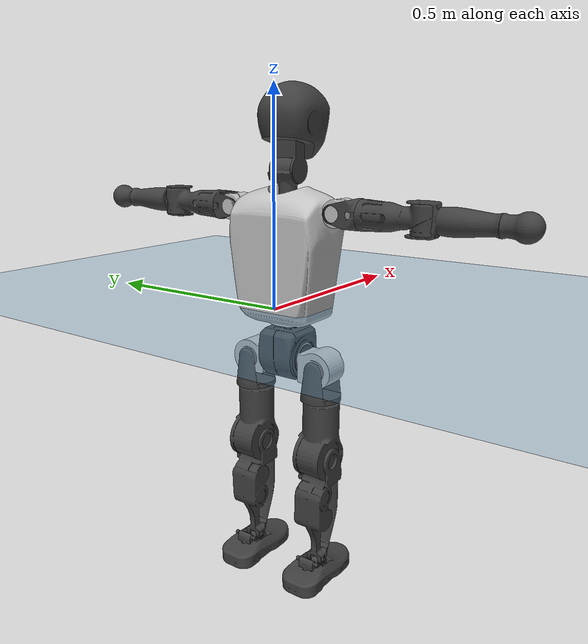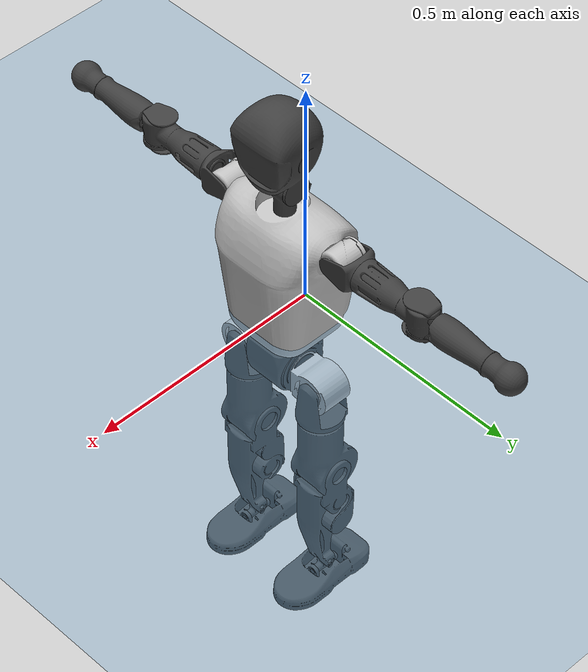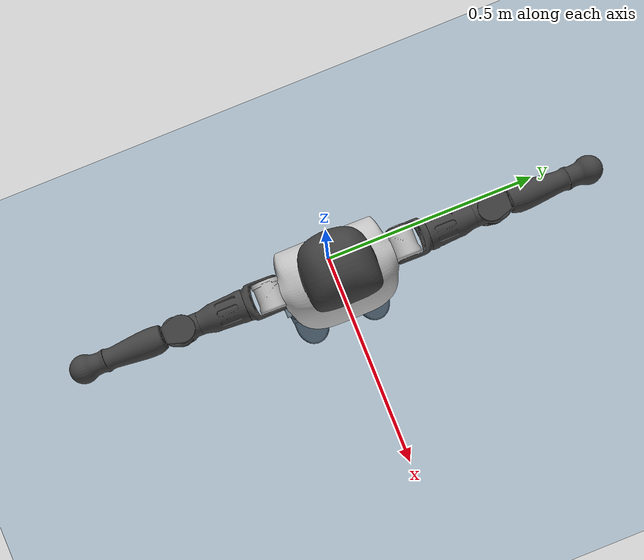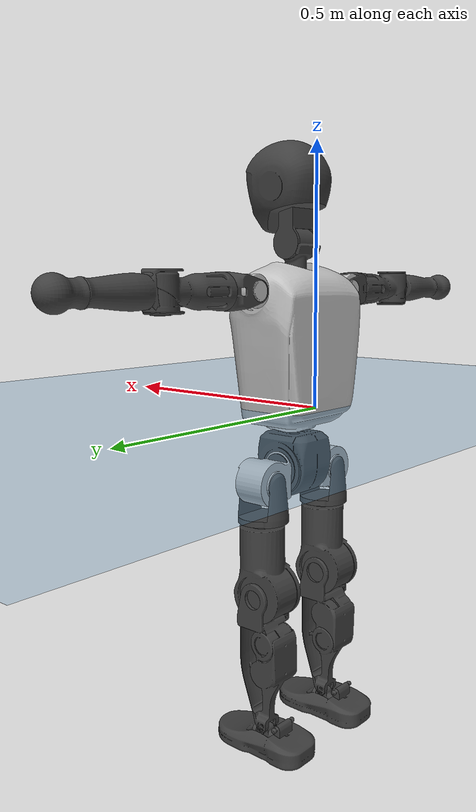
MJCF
<mujoco model="T1">
  <compiler angle="radian" assetdir="assets" balanceinertia="true" inertiafromgeom="false"/>

  <option timestep="0.005" density="1.2" viscosity="2e-05"/>

  <size nkey="1"/>

  <visual>
    <quality shadowsize="8192"/>
    <map shadowclip="0.5"/>
  </visual>

  <default>
    <default class="/">
      <joint armature="0.01" damping="0.01" frictionloss="0.1"/>
      <geom contype="0" conaffinity="0" group="1" solref="-1000 -80"/>
      <site size="0.01 0.005 0.005" group="5"/>
      <general forcelimited="true" biastype="affine" gainprm="25" biasprm="0 -25 -0.6"/>
      <default class="t1">
        <geom rgba="0.25 0.25 0.25 1"/>
        <default class="visual">
          <geom type="mesh" group="2"/>
        </default>
        <default class="collision">
          <geom group="3"/>
        </default>
        <default class="foot">
          <geom size="0.1115 0.05 0.015" type="box" condim="6" group="4" priority="1" solimp="0.015 1 0.015"/>
        </default>
        <default class="reward_collision_sphere">
          <geom group="5" rgba="1 0 0 1"/>
        </default>
      </default>
    </default>
  </default>

  <asset>
    <texture type="skybox" colorspace="auto" name="//unnamed_texture_0" builtin="gradient" rgb1="0.95 0.95 0.95" rgb2="0.95 0.95 0.95" width="100" height="600"/>
    <texture type="2d" colorspace="auto" name="texplane" builtin="checker" rgb1="0.345 0.575 0.748" rgb2="0.345 0.575 0.748" markrgb="1 1 1" width="512" height="512"/>
    <material name="MatPlane" class="/" texture="texplane" texuniform="true" texrepeat="2 2" specular="0.9"/>
    <mesh name="Trunk" class="/" file="Trunk.stl"/>
    <mesh name="H1" class="/" file="H1.stl"/>
    <mesh name="H2" class="/" file="H2.stl"/>
    <mesh name="AL1" class="/" file="AL1.stl"/>
    <mesh name="AL2" class="/" file="AL2.stl"/>
    <mesh name="AL3" class="/" file="AL3.stl"/>
    <mesh name="left_hand_link" class="/" file="left_hand_link.stl"/>
    <mesh name="AR1" class="/" file="AR1.stl"/>
    <mesh name="AR2" class="/" file="AR2.stl"/>
    <mesh name="AR3" class="/" file="AR3.stl"/>
    <mesh name="right_hand_link" class="/" file="right_hand_link.stl"/>
    <mesh name="Waist" class="/" file="Waist.stl"/>
    <mesh name="Hip_Pitch_Left" class="/" file="Hip_Pitch_Left.stl"/>
    <mesh name="Hip_Roll_Left" class="/" file="Hip_Roll_Left.stl"/>
    <mesh name="Hip_Yaw_Left" class="/" file="Hip_Yaw_Left.stl"/>
    <mesh name="Shank_Left" class="/" file="Shank_Left.stl"/>
    <mesh name="Ankle_Cross_Left" class="/" file="Ankle_Cross_Left.stl"/>
    <mesh name="left_foot_link" class="/" file="left_foot_link.stl"/>
    <mesh name="Hip_Pitch_Right" class="/" file="Hip_Pitch_Right.stl"/>
    <mesh name="Hip_Roll_Right" class="/" file="Hip_Roll_Right.stl"/>
    <mesh name="Hip_Yaw_Right" class="/" file="Hip_Yaw_Right.stl"/>
    <mesh name="Shank_Right" class="/" file="Shank_Right.stl"/>
    <mesh name="Ankle_Cross_Right" class="/" file="Ankle_Cross_Right.stl"/>
    <mesh name="right_foot_link" class="/" file="right_foot_link.stl"/>
  </asset>

  <worldbody>
    <geom name="floor" class="/" size="100 100 0.125" type="plane" group="0" material="MatPlane"/>
    <light name="toplight_shadow" class="/" pos="0 0 5" dir="0.0990148 0.0990148 -0.990148" type="directional" ambient="0.04 0.04 0.04" diffuse="0.55 0.55 0.55" specular="0.12 0.12 0.12"/>
    <light name="toplight_fill" class="/" pos="0 0 5" dir="0.0990148 0.0990148 -0.990148" type="directional" castshadow="false" ambient="0.04 0.04 0.04" diffuse="0.3 0.3 0.3" specular="0.08 0.08 0.08"/>
    <body name="trunk" childclass="t1" pos="-0.000746408 5.48756e-05 0.000110784" quat="1 7.35124e-05 8.8603e-05 -0.000209096">
      <inertial pos="0.0467505 -0.000651216 0.110164" quat="0.999966 0.00165547 -0.00811236 -4.38855e-05" mass="9.55416" diaginertia="0.0423351 0.0485755 0.0682042"/>
      <joint name="//unnamed_joint_0" type="free" armature="0" damping="0" frictionloss="0"/>
      <geom name="//unnamed_geom_1" class="visual" rgba="0.76 0.76 0.76 1" mesh="Trunk"/>
      <geom name="//unnamed_geom_2" class="collision" size="0.0702096 0.0936128 0.140419" pos="0.0514058 0 0.124731" type="box"/>
      <geom name="//unnamed_geom_3" class="reward_collision_sphere" size="0.107655" pos="0.0514058 0 0.103943"/>
      <geom name="//unnamed_geom_4" class="reward_collision_sphere" size="0.0140419" pos="0.0514058 0.0775365 0"/>
      <geom name="//unnamed_geom_5" class="reward_collision_sphere" size="0.0140419" pos="0.0514058 -0.0775365 0"/>
      <geom name="//unnamed_geom_6" class="reward_collision_sphere" size="0.0140419" pos="0.0514058 0.0976048 0.187097"/>
      <geom name="//unnamed_geom_7" class="reward_collision_sphere" size="0.0140419" pos="0.0514058 -0.0976048 0.187097"/>
      <site name="imu" pos="-0.00392654 0.00393157 -0.00247119" size="0.00936128"/>
      <camera name="track" pos="0 -1.82439 0" quat="0.707107 0.707107 0 0" mode="trackcom"/>
      <camera name="ego_camera" pos="0.104525 0 0.436559" quat="-0.5 -0.5 0.5 0.5"/>
      <body name="H1" pos="0.0515539 -0.00126046 0.250997" quat="1 -3.5097e-05 2.81728e-05 2.81705e-05">
        <inertial pos="-0.000478377 -0.00119042 0.0606037" quat="0.764006 -0.0174719 0.00225196 0.644969" mass="0.364165" diaginertia="0.000111294 0.000139522 0.000182259"/>
        <joint name="AAHead_yaw" pos="0 0 0" axis="0.00310386 0.000701667 0.999995" range="-1.56492 1.56327" armature="0.00950796" damping="0.0112042" frictionloss="0.089245"/>
        <geom name="//unnamed_geom_8" class="visual" mesh="H1"/>
        <body name="H2" pos="-0.000232358 -5.78097e-05 0.0639488" quat="1 4.31698e-05 -6.1297e-05 8.91066e-05">
          <inertial pos="0.00577553 -0.000468302 0.102558" quat="0.988241 0.108029 -0.0744074 -0.0785738" mass="0.517376" diaginertia="0.000948448 0.00121672 0.00206914"/>
          <joint name="Head_pitch" pos="0 0 0" axis="-0.000153241 -1 7.04261e-05" range="-1.22027 0.347688" armature="0.00904265" damping="0.00544021" frictionloss="0.0930959"/>
          <geom name="//unnamed_geom_9" class="visual" mesh="H2"/>
          <geom name="//unnamed_geom_10" class="collision" size="0.0748902" pos="0.00856763 0 0.114337"/>
          <geom name="//unnamed_geom_11" class="reward_collision_sphere" size="0.0842515" pos="0.0171353 0 0.103943"/>
        </body>
      </body>
      <body name="AL1" pos="0.049139 0.0987499 0.22678" quat="1 -4.42227e-06 0.000444293 -7.37781e-07">
        <inertial pos="-0.00178505 0.0415308 0.000202152" quat="0.504065 0.495488 -0.504073 0.496306" mass="0.424846" diaginertia="0.000616905 0.000798117 0.000352041"/>
        <joint name="Left_Shoulder_Pitch" pos="0 0 0" axis="0.00154404 0.999986 -0.00514661" range="-3.32577 1.21783" armature="0.00900645" damping="0.00892507" frictionloss="0.0966426"/>
        <geom name="//unnamed_geom_12" class="visual" rgba="0.76 0.76 0.76 1" mesh="AL1"/>
        <body name="AL2" pos="0.00129691 0.0440786 -0.000821851" quat="1 0.000255065 0.000197 4.21678e-05">
          <inertial pos="0.00335026 0.0344291 -0.00125327" quat="0.487988 0.511673 -0.487987 0.511787" mass="0.132817" diaginertia="0.000186077 0.000223194 0.000218359"/>
          <joint name="Left_Shoulder_Roll" pos="0 0 0" axis="-1 0.000718919 0.000213507" range="-1.58683 1.73466" armature="0.00939875" damping="0.0113978" frictionloss="0.092018"/>
          <geom name="//unnamed_geom_13" class="visual" mesh="AL2"/>
          <body name="AL3" pos="0.00173527 0.0557215 0.000735598" quat="1 -0.000328003 -0.000176591 3.7906e-05">
            <inertial pos="-0.000487607 0.078155 -0.000494285" quat="0.706882 0.707331 0.000410918 -0.000464253" mass="0.831282" diaginertia="0.0059364 0.00807623 0.000753249"/>
            <joint name="Left_Elbow_Pitch" pos="0 0 0" axis="-0.00265924 -0.999996 0.000390011" stiffness="0.00206774" range="-2.27593 2.26886" armature="0.00932891" damping="0.0131028" frictionloss="0.0946114"/>
            <geom name="//unnamed_geom_14" class="visual" mesh="AL3"/>
            <geom name="//unnamed_geom_15" class="collision" size="0.0280838 0.0702096" pos="0 0.0456097 0" quat="0.707105 0.707108 0 0" type="cylinder"/>
            <geom name="//unnamed_geom_16" class="reward_collision_sphere" size="0.0337006"/>
            <body name="left_hand_link" pos="-0.000518512 0.13442 0.00109959" quat="1 -1.24338e-05 0.000115368 -7.77225e-05">
              <inertial pos="0.00124596 0.099999 -0.000106929" quat="0.707115 0.707094 -0.000858742 -0.00259962" mass="0.269683" diaginertia="0.00376406 0.00511616 0.000257935"/>
              <joint name="Left_Elbow_Yaw" pos="0 0 0" axis="-0.000764777 0.00665215 0.999978" range="-2.46514 0.0202959" armature="0.00920168" damping="0.00822671" frictionloss="0.0924994"/>
              <geom name="//unnamed_geom_17" class="visual" mesh="left_hand_link"/>
              <geom name="//unnamed_geom_18" class="collision" size="0.0280838 0.0819112" pos="0 0.118585 0" quat="0.707105 0.707108 0 0" type="cylinder"/>
              <geom name="//unnamed_geom_19" class="reward_collision_sphere" size="0.0468064"/>
              <geom name="//unnamed_geom_20" class="reward_collision_sphere" size="0.0327645" pos="0 0.100341 0"/>
              <geom name="//unnamed_geom_21" class="reward_collision_sphere" size="0.0327645" pos="0 0.196122 0"/>
            </body>
          </body>
        </body>
      </body>
      <body name="AR1" pos="0.048973 -0.0963567 0.227549" quat="1 -4.57575e-05 0.00036365 0.000379263">
        <inertial pos="-0.00191012 -0.0413219 4.67429e-05" quat="0.504451 0.495496 -0.504456 0.495517" mass="0.434589" diaginertia="0.000635229 0.000815632 0.000356865"/>
        <joint name="Right_Shoulder_Pitch" pos="0 0 0" axis="0.000296846 -0.999999 -0.00111771" range="-1.22985 3.30441" armature="0.00905992" damping="0.00228002" frictionloss="0.0978258"/>
        <geom name="//unnamed_geom_22" class="visual" rgba="0.76 0.76 0.76 1" mesh="AR1"/>
        <body name="AR2" pos="-0.000705968 -0.0433252 -0.000401053" quat="1 5.09149e-05 6.22196e-05 -4.60639e-05">
          <inertial pos="0.00410078 -0.0349409 -0.000395862" quat="0.512094 0.488229 -0.511436 0.487674" mass="0.13006" diaginertia="0.000183345 0.000213593 0.000210382"/>
          <joint name="Right_Shoulder_Roll" pos="0 0 0" axis="-0.999996 0.00251926 -0.00152005" range="-1.71676 1.56202" armature="0.00899437" damping="0.0117668" frictionloss="0.0950158"/>
          <geom name="//unnamed_geom_23" class="visual" mesh="AR2"/>
          <body name="AR3" pos="-0.000788617 -0.0562232 -0.000737474" quat="1 4.19407e-05 -5.3646e-06 -1.6463e-05">
            <inertial pos="-0.00111897 -0.0783895 0.00022297" quat="0.707429 0.70677 0.00151669 -0.00437377" mass="0.837449" diaginertia="0.00590996 0.00810472 0.000762103"/>
            <joint name="Right_Elbow_Pitch" pos="0 0 0" axis="0.00513757 0.999986 0.000944345" range="-2.26965 2.28407" armature="0.00926961" damping="0.00940083" frictionloss="0.0902554"/>
            <geom name="//unnamed_geom_24" class="visual" mesh="AR3"/>
            <geom name="//unnamed_geom_25" class="collision" size="0.0280838 0.0702096" pos="0 -0.0456097 0" quat="0.707105 0.707108 0 0" type="cylinder"/>
            <geom name="//unnamed_geom_26" class="reward_collision_sphere" size="0.0337006"/>
            <body name="right_hand_link" pos="-0.00114545 -0.134938 -0.000132213" quat="1 -5.79742e-05 -6.58827e-05 4.22285e-05">
              <inertial pos="-0.000716982 -0.100358 0.00122959" quat="0.706415 0.707798 0.000164832 -3.56472e-05" mass="0.266889" diaginertia="0.00375956 0.005081 0.000262027"/>
              <joint name="Right_Elbow_Yaw" pos="0 0 0" axis="0.00229744 -0.00298884 0.999993" range="-0.0197606 2.44532" armature="0.00943178" damping="0.0132095" frictionloss="0.0913663"/>
              <geom name="//unnamed_geom_27" class="visual" mesh="right_hand_link"/>
              <geom name="//unnamed_geom_28" class="collision" size="0.0280838 0.0819112" pos="0 -0.118585 0" quat="0.707105 0.707108 0 0" type="cylinder"/>
              <geom name="//unnamed_geom_29" class="reward_collision_sphere" size="0.0468064"/>
              <geom name="//unnamed_geom_30" class="reward_collision_sphere" size="0.0327645" pos="0 -0.100341 0"/>
              <geom name="//unnamed_geom_31" class="reward_collision_sphere" size="0.0327645" pos="0 -0.196122 0"/>
            </body>
          </body>
        </body>
      </body>
      <body name="Waist" pos="0.054088 -0.000575017 -0.11997" quat="1 -9.71444e-05 7.86671e-05 -5.27632e-05">
        <inertial pos="0.00177608 -0.000564885 0.00790749" quat="0.98319 -0.00327468 -0.18251 0.00399982" mass="2.13877" diaginertia="0.00252437 0.00336997 0.0058652"/>
        <joint name="Waist" pos="0 0 0" axis="-0.000650937 -0.00115249 0.999999" range="-1.55434 1.58892" armature="0.00945274" damping="0.0139196" frictionloss="0.0915256"/>
        <geom name="//unnamed_geom_32" class="visual" mesh="Waist"/>
        <body name="Hip_Pitch_Left" pos="-0.000545657 0.0970002 0.00040946" quat="1 -2.71891e-05 -2.71398e-05 1.16572e-05">
          <inertial pos="0.000350989 -0.00680932 -0.0193264" quat="0.974914 0.222178 0.0131561 -0.00249159" mass="0.837928" diaginertia="0.000843865 0.000920535 0.0015346"/>
          <joint name="Left_Hip_Pitch" pos="0 0 0" axis="0.000839202 0.999997 -0.00236074" range="-1.79199 1.57449" armature="0.00909132" damping="0.0105743" frictionloss="0.0938615"/>
          <geom name="//unnamed_geom_33" class="visual" rgba="0.76 0.76 0.76 1" mesh="Hip_Pitch_Left"/>
          <body name="Hip_Roll_Left" pos="0.000885092 0.000606759 -0.0206176" quat="1 -0.000440709 0.000268499 -7.04597e-05">
            <inertial pos="0.000235924 -0.000309067 -0.0557526" quat="0.707481 -0.00744968 -0.00574546 0.70667" mass="0.312546" diaginertia="0.000782548 0.000944572 0.000620577"/>
            <joint name="Left_Hip_Roll" pos="0 0 0" axis="-0.999994 -0.00262992 -0.00211339" range="-1.55264 0.194615" armature="0.00975934" damping="0.0116053" frictionloss="0.0969486"/>
            <geom name="//unnamed_geom_34" class="visual" mesh="Hip_Roll_Left"/>
            <geom name="//unnamed_geom_35" class="reward_collision_sphere" size="0.051487"/>
            <body name="Hip_Yaw_Left" pos="-4.13368e-05 0.000836008 -0.0864138" quat="1 0.000111705 -3.20644e-05 0.000202699">
              <inertial pos="-0.00656982 -0.000207375 -0.092517" quat="0.696471 -0.0338291 -0.0319839 0.716073" mass="1.77297" diaginertia="0.011917 0.015821 0.00312173"/>
              <joint name="Left_Hip_Yaw" pos="0 0 0" axis="-0.000325067 0.000150892 -1" range="-0.985432 1.0115" armature="0.0093441" damping="0.00908051" frictionloss="0.0932207"/>
              <geom name="//unnamed_geom_36" class="visual" mesh="Hip_Yaw_Left"/>
              <geom name="//unnamed_geom_37" class="collision" size="0.0468064 0.0748902" type="cylinder"/>
              <body name="Shank_Left" pos="-0.0107974 0.00010582 -0.138859" quat="1 7.49763e-05 1.79387e-05 -0.000114057">
                <inertial pos="-0.00610336 0.000257563 -0.129539" quat="0.997367 -0.0026366 -0.0269907 0.0672531" mass="1.42952" diaginertia="0.0159452 0.0221045 0.00222736"/>
                <joint name="Left_Knee_Pitch" pos="0 0 0" axis="0.00227768 0.999992 -0.00336549" stiffness="0.00174895" range="-0.00232018 2.33165" armature="0.00962676" damping="0.0109047" frictionloss="0.0975613"/>
                <geom name="//unnamed_geom_38" class="visual" mesh="Shank_Left"/>
                <geom name="//unnamed_geom_39" class="collision" size="0.0468064 0.0702096" pos="0 0 -0.124731" type="cylinder"/>
                <geom name="//unnamed_geom_40" class="reward_collision_sphere" size="0.0608483"/>
                <body name="Ankle_Cross_Left" pos="-0.000466948 0.000230648 -0.291596" quat="1 9.78904e-06 -2.19998e-05 3.60632e-06">
                  <inertial pos="-0.00280969 0.00041355 -0.00857763" quat="0.443888 0.549863 0.551093 0.443747" mass="0.0591434" diaginertia="1.30858e-05 1.59923e-05 1.36685e-05"/>
                  <joint name="Left_Ankle_Pitch" pos="0 0 0" axis="0.000294485 0.999995 -0.00312478" range="-0.869225 0.362402" armature="0.00983794" damping="0.0114037" frictionloss="0.0976645"/>
                  <geom name="//unnamed_geom_41" class="visual" mesh="Ankle_Cross_Left"/>
                  <body name="left_foot_link" pos="0.00057435 0.000320737 -0.0116641" quat="1 -5.8999e-05 -5.25726e-05 8.54127e-05">
                    <inertial pos="-0.000954798 -0.000442586 -0.00947487" quat="-4.29495e-05 0.621492 -0.00225232 0.783417" mass="0.56084" diaginertia="0.00125496 0.00151502 0.00266019"/>
                    <joint name="Left_Ankle_Roll" pos="0 0 0" axis="-1 0.000666325 0.000223455" range="-0.460825 0.458037" armature="0.00936186" damping="0.00266542" frictionloss="0.091251"/>
                    <geom name="//unnamed_geom_42" class="visual" mesh="left_foot_link"/>
                    <geom name="left_foot" class="foot" size="0.102542 0.0459704 0.0147405" pos="0.00856763 0 -0.0155914"/>
                    <geom name="//unnamed_geom_44" class="reward_collision_sphere" size="0.0486786" pos="0.00856763 0 -0.0155914"/>
                    <geom name="//unnamed_geom_45" class="reward_collision_sphere" size="0.0280838" pos="0.0813925 -0.0209805 -0.0155914"/>
                    <geom name="//unnamed_geom_46" class="reward_collision_sphere" size="0.0280838" pos="-0.0599734 -0.0209805 -0.0155914"/>
                    <site name="left_foot" class="foot" pos="0.00856763 0 -0.0155914" size="0.00936128"/>
                  </body>
                </body>
              </body>
            </body>
          </body>
        </body>
        <body name="Hip_Pitch_Right" pos="0.000158882 -0.0971575 0.000902648" quat="1 0.000192371 -8.86464e-05 -0.00040427">
          <inertial pos="-8.65143e-05 0.00697094 -0.0186682" quat="0.973422 -0.228507 0.014468 -0.00494724" mass="0.841753" diaginertia="0.000823972 0.000931045 0.00149902"/>
          <joint name="Right_Hip_Pitch" pos="0 0 0" axis="-0.00472009 -0.999989 -0.00044062" range="-1.60018 1.81729" armature="0.00928343" damping="0.00797927" frictionloss="0.0904049"/>
          <geom name="//unnamed_geom_47" class="visual" rgba="0.76 0.76 0.76 1" mesh="Hip_Pitch_Right"/>
          <body name="Hip_Roll_Right" pos="0.00111824 -0.00010275 -0.0208624" quat="1 -2.14567e-05 -1.23911e-05 9.17195e-05">
            <inertial pos="0.00132452 0.000153237 -0.0559536" quat="0.707357 -0.0066933 -0.00648459 0.706795" mass="0.31632" diaginertia="0.000807077 0.000969256 0.00063001"/>
            <joint name="Right_Hip_Roll" pos="0 0 0" axis="-0.999963 -0.00846396 0.00135034" stiffness="0.00392371" range="-0.198737 1.56798" armature="0.00977069" damping="0.00845802" frictionloss="0.0955791"/>
            <geom name="//unnamed_geom_48" class="visual" mesh="Hip_Roll_Right"/>
            <geom name="//unnamed_geom_49" class="reward_collision_sphere" size="0.051487"/>
            <body name="Hip_Yaw_Right" pos="4.45378e-05 -0.000752245 -0.0854676" quat="1 5.15906e-05 -2.78537e-05 -4.68338e-05">
              <inertial pos="-0.00675364 0.000170607 -0.0919841" quat="0.711435 -0.03533 -0.030611 0.701196" mass="1.77869" diaginertia="0.0118701 0.0161751 0.00315915"/>
              <joint name="Right_Hip_Yaw" pos="0 0 0" axis="0.0032698 0.00258137 -0.999991" range="-0.996579 1.00635" armature="0.00911276" damping="0.00946637" frictionloss="0.0933838"/>
              <geom name="//unnamed_geom_50" class="visual" mesh="Hip_Yaw_Right"/>
              <geom name="//unnamed_geom_51" class="collision" size="0.0468064 0.0748902" type="cylinder"/>
              <body name="Shank_Right" pos="-0.012705 -0.00153749 -0.140028" quat="1 5.37651e-05 1.01802e-05 -2.78544e-05">
                <inertial pos="-0.00641333 0.00135221 -0.126505" quat="0.999253 -0.00120437 -0.0231429 -0.0309236" mass="1.47642" diaginertia="0.0163393 0.0223623 0.00242729"/>
                <joint name="Right_Knee_Pitch" pos="0 0 0" axis="5.0178e-05 -0.999998 -0.00195816" range="-2.32226 -0.0070887" armature="0.00934228" damping="0.00645026" frictionloss="0.0976826"/>
                <geom name="//unnamed_geom_52" class="visual" mesh="Shank_Right"/>
                <geom name="//unnamed_geom_53" class="collision" size="0.0468064 0.0702096" pos="0 0 -0.124731" type="cylinder"/>
                <geom name="//unnamed_geom_54" class="reward_collision_sphere" size="0.0608483"/>
                <body name="Ankle_Cross_Right" pos="0.000225621 -8.95921e-05 -0.291773" quat="1 -5.72727e-05 3.67109e-05 2.86487e-05">
                  <inertial pos="-0.0030631 0.000414232 -0.0083226" quat="0.441483 0.553812 0.548629 0.444287" mass="0.0603203" diaginertia="1.34485e-05 1.591e-05 1.37576e-05"/>
                  <joint name="Right_Ankle_Pitch" pos="0 0 0" axis="-8.68701e-05 -0.999996 -0.00278223" stiffness="0.000758559" range="-0.369672 0.869199" armature="0.00905722" damping="0.00229271" frictionloss="0.0950235"/>
                  <geom name="//unnamed_geom_55" class="visual" mesh="Ankle_Cross_Right"/>
                  <body name="right_foot_link" pos="-0.00100954 -0.00071075 -0.012047" quat="1 5.4899e-07 -4.24841e-07 3.9198e-07">
                    <inertial pos="-0.000226935 -0.000557944 -0.00912943" quat="-7.88026e-05 0.624155 0.000213555 0.781301" mass="0.559048" diaginertia="0.00124704 0.00149829 0.00266121"/>
                    <joint name="Right_Ankle_Roll" pos="0 0 0" axis="-1 -0.000101234 -0.000542911" range="-0.432344 0.454955" armature="0.0090977" damping="0.00421864" frictionloss="0.0969963"/>
                    <geom name="//unnamed_geom_56" class="visual" mesh="right_foot_link"/>
                    <geom name="right_foot" class="foot" size="0.0967331 0.0438742 0.0137961" pos="0.00856763 0 -0.0155914"/>
                    <geom name="//unnamed_geom_58" class="reward_collision_sphere" size="0.0374451"/>
                    <geom name="//unnamed_geom_59" class="reward_collision_sphere" size="0.0280838" pos="0.00856763 0 -0.0155914"/>
                    <geom name="//unnamed_geom_60" class="reward_collision_sphere" size="0.0280838" pos="0.0813925 0.0209805 -0.0155914"/>
                    <geom name="//unnamed_geom_61" class="reward_collision_sphere" size="0.0280838" pos="-0.0599734 0.0209805 -0.0155914"/>
                    <site name="right_foot" class="foot" pos="0.00856763 0 -0.0155914" size="0.00936128"/>
                  </body>
                </body>
              </body>
            </body>
          </body>
        </body>
      </body>
    </body>
  </worldbody>

  <contact>
    <pair class="/" geom1="floor" geom2="left_foot" name="//unnamed_contact_0"/>
    <pair class="/" geom1="floor" geom2="right_foot" name="//unnamed_contact_1"/>
  </contact>

  <actuator>
    <general name="AAHead_yaw" class="/" joint="AAHead_yaw" forcerange="-6.40573 6.40573" gainprm="22.5821" biasprm="0 -22.5821 -0.552823"/>
    <general name="Head_pitch" class="/" joint="Head_pitch" forcerange="-6.65521 6.65521" gainprm="22.5821" biasprm="0 -22.5821 -0.552823"/>
    <general name="Left_Shoulder_Pitch" class="/" joint="Left_Shoulder_Pitch" forcerange="-16.8163 16.8163" gainprm="22.5821" biasprm="0 -22.5821 -0.552823"/>
    <general name="Left_Shoulder_Roll" class="/" joint="Left_Shoulder_Roll" forcerange="-16.9428 16.9428" gainprm="22.5821" biasprm="0 -22.5821 -0.552823"/>
    <general name="Left_Elbow_Pitch" class="/" joint="Left_Elbow_Pitch" forcerange="-16.6297 16.6297" gainprm="22.5821" biasprm="0 -22.5821 -0.552823"/>
    <general name="Left_Elbow_Yaw" class="/" joint="Left_Elbow_Yaw" forcerange="-16.3912 16.3912" gainprm="22.5821" biasprm="0 -22.5821 -0.552823"/>
    <general name="Right_Shoulder_Pitch" class="/" joint="Right_Shoulder_Pitch" forcerange="-17.4549 17.4549" gainprm="22.5821" biasprm="0 -22.5821 -0.552823"/>
    <general name="Right_Shoulder_Roll" class="/" joint="Right_Shoulder_Roll" forcerange="-16.7556 16.7556" gainprm="22.5821" biasprm="0 -22.5821 -0.552823"/>
    <general name="Right_Elbow_Pitch" class="/" joint="Right_Elbow_Pitch" forcerange="-16.7891 16.7891" gainprm="22.5821" biasprm="0 -22.5821 -0.552823"/>
    <general name="Right_Elbow_Yaw" class="/" joint="Right_Elbow_Yaw" forcerange="-16.9021 16.9021" gainprm="22.5821" biasprm="0 -22.5821 -0.552823"/>
    <general name="Waist" class="/" joint="Waist" forcerange="-27.6775 27.6775" gainprm="22.5821" biasprm="0 -22.5821 -0.552823"/>
    <general name="Left_Hip_Pitch" class="/" joint="Left_Hip_Pitch" forcerange="-41.8809 41.8809" gainprm="22.5821" biasprm="0 -22.5821 -0.552823"/>
    <general name="Left_Hip_Roll" class="/" joint="Left_Hip_Roll" forcerange="-28.6057 28.6057" gainprm="22.5821" biasprm="0 -22.5821 -0.552823"/>
    <general name="Left_Hip_Yaw" class="/" joint="Left_Hip_Yaw" forcerange="-28.5848 28.5848" gainprm="22.5821" biasprm="0 -22.5821 -0.552823"/>
    <general name="Left_Knee_Pitch" class="/" joint="Left_Knee_Pitch" forcerange="-54.0564 54.0564" gainprm="22.5821" biasprm="0 -22.5821 -0.552823"/>
    <general name="Left_Ankle_Pitch" class="/" joint="Left_Ankle_Pitch" forcerange="-19.3636 19.3636" gainprm="22.5821" biasprm="0 -22.5821 -0.552823"/>
    <general name="Left_Ankle_Roll" class="/" joint="Left_Ankle_Roll" forcerange="-14.2083 14.2083" gainprm="22.5821" biasprm="0 -22.5821 -0.552823"/>
    <general name="Right_Hip_Pitch" class="/" joint="Right_Hip_Pitch" forcerange="-42.1955 42.1955" gainprm="22.5821" biasprm="0 -22.5821 -0.552823"/>
    <general name="Right_Hip_Roll" class="/" joint="Right_Hip_Roll" forcerange="-27.5205 27.5205" gainprm="22.5821" biasprm="0 -22.5821 -0.552823"/>
    <general name="Right_Hip_Yaw" class="/" joint="Right_Hip_Yaw" forcerange="-28.5448 28.5448" gainprm="22.5821" biasprm="0 -22.5821 -0.552823"/>
    <general name="Right_Knee_Pitch" class="/" joint="Right_Knee_Pitch" forcerange="-56.6687 56.6687" gainprm="22.5821" biasprm="0 -22.5821 -0.552823"/>
    <general name="Right_Ankle_Pitch" class="/" joint="Right_Ankle_Pitch" forcerange="-18.5521 18.5521" gainprm="22.5821" biasprm="0 -22.5821 -0.552823"/>
    <general name="Right_Ankle_Roll" class="/" joint="Right_Ankle_Roll" forcerange="-13.8587 13.8587" gainprm="22.5821" biasprm="0 -22.5821 -0.552823"/>
  </actuator>

  <sensor>
    <gyro site="imu" name="imu_angular_velocity"/>
    <velocimeter site="imu" name="imu_linear_velocity"/>
    <framelinvel objtype="site" objname="left_foot" name="left_foot_global_linear_velocity"/>
    <framelinvel objtype="site" objname="right_foot" name="right_foot_global_linear_velocity"/>
  </sensor>

  <keyframe>
    <key name="home" qpos="0 0 0.6385 1 0 0 0 0 0 0 1.4 0 -0.4 0 -1.4 0 0.4 0 -0.4 0 0 0.8 -0.4 0 0.4 0 0 -0.8 0.4 0"/>
  </keyframe>
</mujoco>
